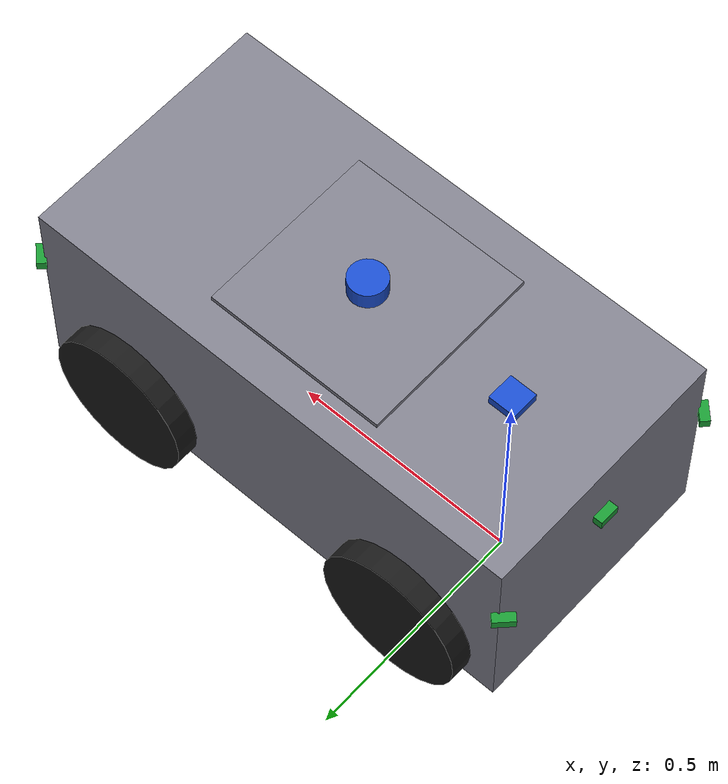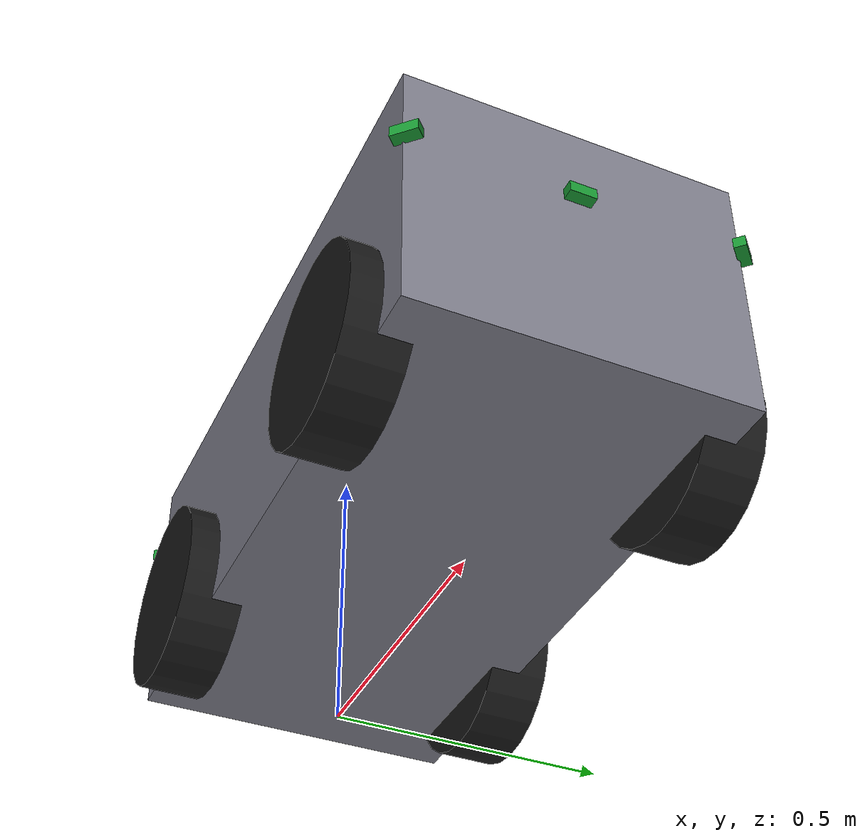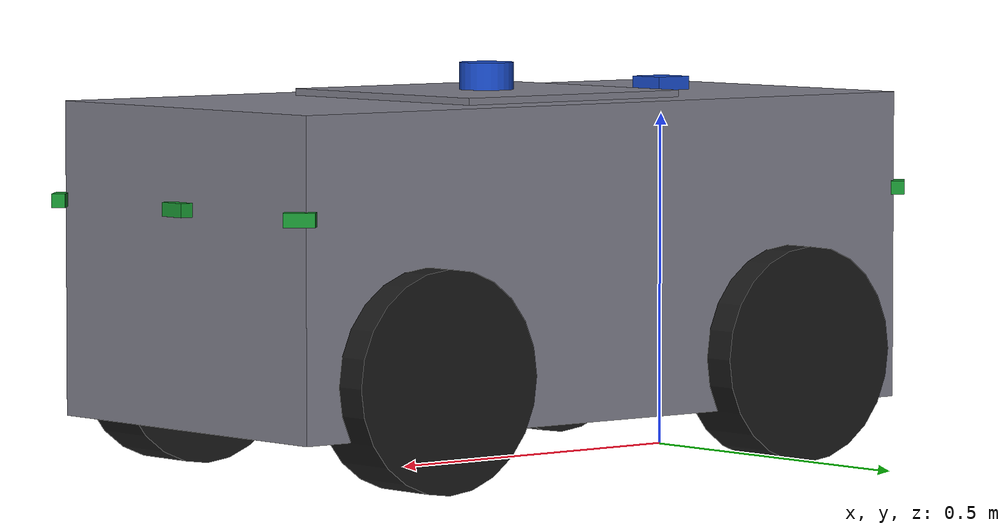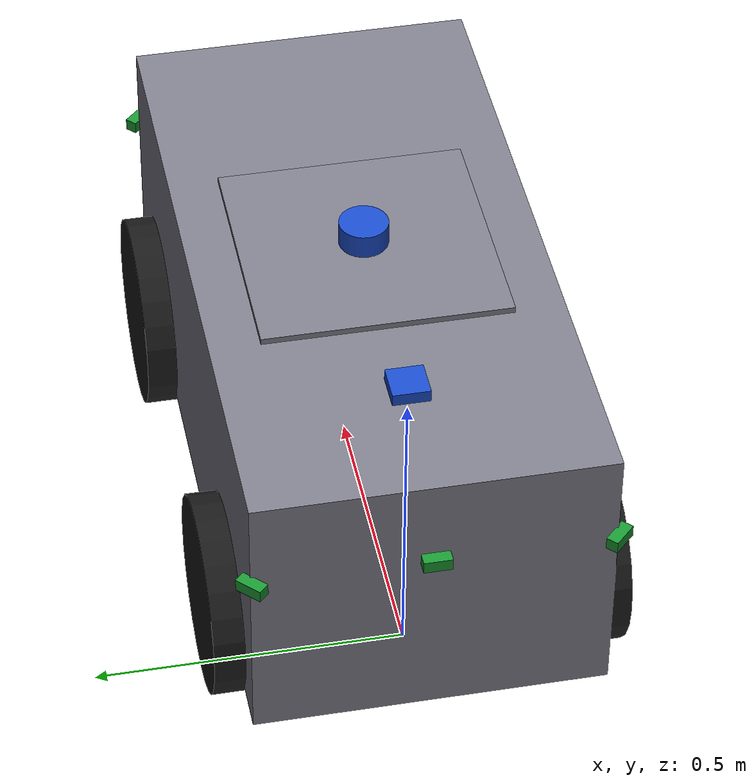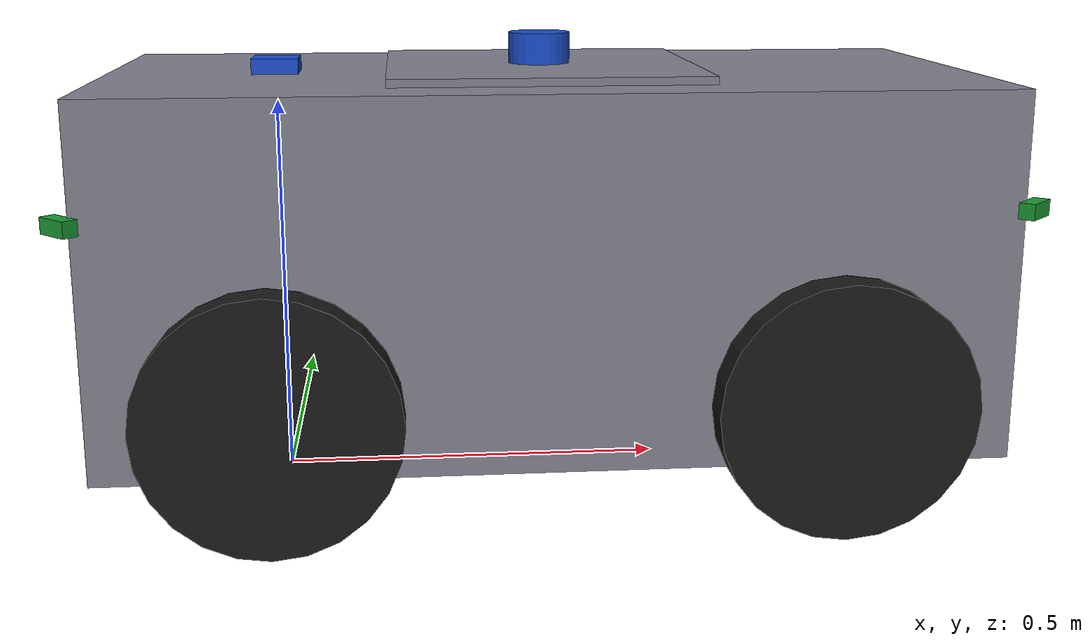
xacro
<?xml version="1.0"?>
<robot name="rover" xmlns:xacro="http://www.ros.org/wiki/xacro">

  <!-- ===== Measurements (meters, kg). Edit these, not the geometry below ===== -->
  <xacro:property name="chassis_length" value="1.118"/>
  <xacro:property name="chassis_width" value="0.562"/>
  <xacro:property name="chassis_height" value="0.457"/>
  <xacro:property name="chassis_mass" value="24.0"/>
  <xacro:property name="wheelbase" value="0.686"/>
  <xacro:property name="wheel_radius" value="0.15875"/>
  <xacro:property name="ground_clearance" value="0.08"/>
  <xacro:property name="track_width" value="0.559"/>
  <xacro:property name="wheel_width" value="0.1016"/>
  <xacro:property name="wheel_mass" value="1.5"/>
  <xacro:property name="max_steer_angle" value="0.7"/>

  <!-- Height of the chassis box center, measured from base_link -->
  <xacro:property name="chassis_z"
                  value="${ground_clearance + chassis_height / 2 - wheel_radius}"/>

  <!-- Top surface of the chassis, measured from base_link -->
  <xacro:property name="chassis_top_z"
                  value="${ground_clearance + chassis_height - wheel_radius}"/>

  <!-- Sensor positions in meters from base_link (rear axle center, x forward, z up) -->
  <!-- Scissor lift: platform slides straight up from the chassis top -->
  <xacro:property name="lift_x" value="${wheelbase / 2}"/>
  <xacro:property name="lift_y" value="0.0"/>
  <xacro:property name="lift_travel" value="1.2192"/>
  <xacro:property name="lift_platform_mass" value="5.0"/>
  <xacro:property name="lidar_offset" value="0.03"/>

  <xacro:property name="imu_x" value="${wheelbase / 2}"/>
  <xacro:property name="imu_y" value="0.0"/>
  <xacro:property name="imu_z" value="${chassis_z}"/>

  <xacro:property name="gps_x" value="0.0"/>
  <xacro:property name="gps_y" value="0.0"/>
  <xacro:property name="gps_z" value="${chassis_top_z + 0.01}"/>
    <!-- Ultrasonics: PLACEHOLDER positions. z is 3 in above the top of the wheels -->
  <xacro:property name="us_z" value="${wheel_radius + 0.0762}"/>
  <xacro:property name="us_front_x" value="${wheelbase / 2 + chassis_length / 2 + 0.01}"/>
  <xacro:property name="us_rear_x" value="${wheelbase / 2 - chassis_length / 2 - 0.01}"/>
  <xacro:property name="us_side_y" value="0.28"/>
  <xacro:property name="us_angle" value="${pi/4}"/>

  <material name="chassis_grey">
    <color rgba="0.5 0.5 0.55 1.0"/>
  </material>

  <material name="wheel_black">
    <color rgba="0.1 0.1 0.1 1.0"/>
  </material>

  <material name="sensor_blue">
    <color rgba="0.1 0.3 0.8 1.0"/>
  </material>

  <!-- ===== Frames ===== -->
  <link name="base_footprint"/>

  <joint name="base_joint" type="fixed">
    <parent link="base_footprint"/>
    <child link="base_link"/>
    <origin xyz="0 0 ${wheel_radius}" rpy="0 0 0"/>
  </joint>

  <link name="base_link">
    <visual>
      <origin xyz="${wheelbase / 2} 0 ${chassis_z}" rpy="0 0 0"/>
      <geometry>
        <box size="${chassis_length} ${chassis_width} ${chassis_height}"/>
      </geometry>
      <material name="chassis_grey"/>
    </visual>
    <collision>
      <origin xyz="${wheelbase / 2} 0 ${chassis_z}" rpy="0 0 0"/>
      <geometry>
        <box size="${chassis_length} ${chassis_width} ${chassis_height}"/>
      </geometry>
    </collision>
    <inertial>
      <origin xyz="${wheelbase / 2} 0 ${chassis_z}" rpy="0 0 0"/>
      <mass value="${chassis_mass}"/>
      <inertia
        ixx="${chassis_mass / 12 * (chassis_width**2 + chassis_height**2)}"
        iyy="${chassis_mass / 12 * (chassis_length**2 + chassis_height**2)}"
        izz="${chassis_mass / 12 * (chassis_length**2 + chassis_width**2)}"
        ixy="0" ixz="0" iyz="0"/>
    </inertial>
  </link>

    <!-- ===== Wheels ===== -->
  <xacro:macro name="wheel" params="prefix parent x y">
    <link name="${prefix}_wheel">
      <visual>
        <origin xyz="0 0 0" rpy="${pi / 2} 0 0"/>
        <geometry>
          <cylinder radius="${wheel_radius}" length="${wheel_width}"/>
        </geometry>
        <material name="wheel_black"/>
      </visual>
      <collision>
        <origin xyz="0 0 0" rpy="${pi / 2} 0 0"/>
        <geometry>
          <cylinder radius="${wheel_radius}" length="${wheel_width}"/>
        </geometry>
      </collision>
      <inertial>
        <mass value="${wheel_mass}"/>
        <inertia
          ixx="${wheel_mass / 12 * (3 * wheel_radius**2 + wheel_width**2)}"
          iyy="${wheel_mass * wheel_radius**2 / 2}"
          izz="${wheel_mass / 12 * (3 * wheel_radius**2 + wheel_width**2)}"
          ixy="0" ixz="0" iyz="0"/>
      </inertial>
    </link>

    <joint name="${prefix}_wheel_joint" type="continuous">
      <parent link="${parent}"/>
      <child link="${prefix}_wheel"/>
      <origin xyz="${x} ${y} 0" rpy="0 0 0"/>
      <axis xyz="0 1 0"/>
    </joint>
  </xacro:macro>

  <xacro:macro name="steering_knuckle" params="prefix y">
    <link name="${prefix}_knuckle">
      <inertial>
        <mass value="0.5"/>
        <inertia ixx="0.001" iyy="0.001" izz="0.001" ixy="0" ixz="0" iyz="0"/>
      </inertial>
    </link>

    <joint name="${prefix}_steer_joint" type="revolute">
      <parent link="base_link"/>
      <child link="${prefix}_knuckle"/>
      <origin xyz="${wheelbase} ${y} 0" rpy="0 0 0"/>
      <axis xyz="0 0 1"/>
      <limit lower="${-max_steer_angle}" upper="${max_steer_angle}"
             effort="50" velocity="2.0"/>
    </joint>

    <xacro:wheel prefix="${prefix}" parent="${prefix}_knuckle" x="0" y="0"/>
  </xacro:macro>

  <xacro:wheel prefix="rear_left" parent="base_link" x="0" y="${track_width / 2}"/>
  <xacro:wheel prefix="rear_right" parent="base_link" x="0" y="${-track_width / 2}"/>
  <xacro:steering_knuckle prefix="front_left" y="${track_width / 2}"/>
  <xacro:steering_knuckle prefix="front_right" y="${-track_width / 2}"/>

  <!-- ===== Sensors ===== -->
  <!-- Lift platform: slides up and down on a prismatic joint -->
  <link name="lift_platform">
    <visual>
      <geometry>
        <box size="0.4 0.4 0.02"/>
      </geometry>
      <material name="chassis_grey"/>
    </visual>
    <collision>
      <geometry>
        <box size="0.4 0.4 0.02"/>
      </geometry>
    </collision>
    <inertial>
      <mass value="${lift_platform_mass}"/>
      <inertia ixx="0.067" iyy="0.067" izz="0.133" ixy="0" ixz="0" iyz="0"/>
    </inertial>
  </link>

  <joint name="lift_joint" type="prismatic">
    <parent link="base_link"/>
    <child link="lift_platform"/>
    <origin xyz="${lift_x} ${lift_y} ${chassis_top_z}" rpy="0 0 0"/>
    <axis xyz="0 0 1"/>
    <limit lower="0.0" upper="${lift_travel}" effort="500" velocity="0.05"/>
  </joint>

  <!-- LIDAR rides on the platform -->
  <link name="lidar_link">
    <visual>
      <geometry>
        <cylinder radius="0.04" length="0.04"/>
      </geometry>
      <material name="sensor_blue"/>
    </visual>
  </link>

  <joint name="lidar_joint" type="fixed">
    <parent link="lift_platform"/>
    <child link="lidar_link"/>
    <origin xyz="0 0 ${lidar_offset}" rpy="0 0 0"/>
  </joint>

  <link name="imu_link">
    <visual>
      <geometry>
        <box size="0.04 0.04 0.02"/>
      </geometry>
      <material name="sensor_blue"/>
    </visual>
  </link>
  <joint name="imu_joint" type="fixed">
    <parent link="base_link"/>
    <child link="imu_link"/>
    <origin xyz="${imu_x} ${imu_y} ${imu_z}" rpy="0 0 0"/>
  </joint>

  <link name="gps_link">
    <visual>
      <geometry>
        <box size="0.06 0.06 0.02"/>
      </geometry>
      <material name="sensor_blue"/>
    </visual>
  </link>
  <joint name="gps_joint" type="fixed">
    <parent link="base_link"/>
    <child link="gps_link"/>
    <origin xyz="${gps_x} ${gps_y} ${gps_z}" rpy="0 0 0"/>
  </joint>

  <xacro:include filename="$(find rover_description)/urdf/rover.gazebo.xacro"/>

  <!-- ===== Ultrasonic sensors ===== -->
  <material name="us_green">
    <color rgba="0.1 0.6 0.2 1.0"/>
  </material>

  <xacro:macro name="ultrasonic" params="id x y yaw">
    <link name="us_${id}">
      <visual>
        <geometry>
          <box size="0.02 0.045 0.02"/>
        </geometry>
        <material name="us_green"/>
      </visual>
    </link>
    <joint name="us_${id}_joint" type="fixed">
      <parent link="base_link"/>
      <child link="us_${id}"/>
      <origin xyz="${x} ${y} ${us_z}" rpy="0 0 ${yaw}"/>
    </joint>
  </xacro:macro>

  <xacro:ultrasonic id="front_left" x="${us_front_x}" y="${us_side_y}" yaw="${us_angle}"/>
  <xacro:ultrasonic id="front_mid" x="${us_front_x}" y="0" yaw="0"/>
  <xacro:ultrasonic id="front_right" x="${us_front_x}" y="${-us_side_y}" yaw="${-us_angle}"/>
  <xacro:ultrasonic id="rear_left" x="${us_rear_x}" y="${us_side_y}" yaw="${pi - us_angle}"/>
  <xacro:ultrasonic id="rear_mid" x="${us_rear_x}" y="0" yaw="${pi}"/>
  <xacro:ultrasonic id="rear_right" x="${us_rear_x}" y="${-us_side_y}" yaw="${pi + us_angle}"/>

</robot>
